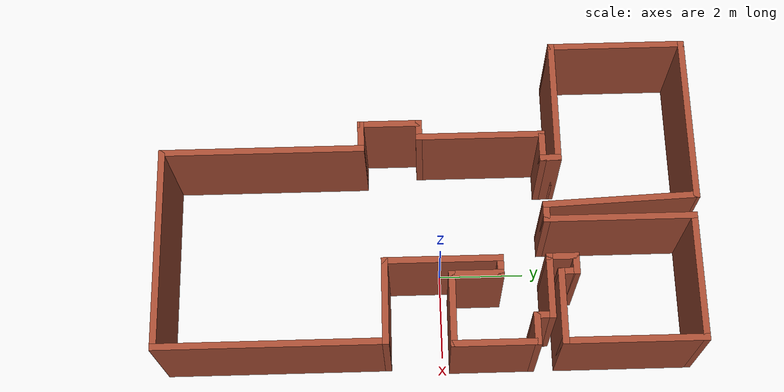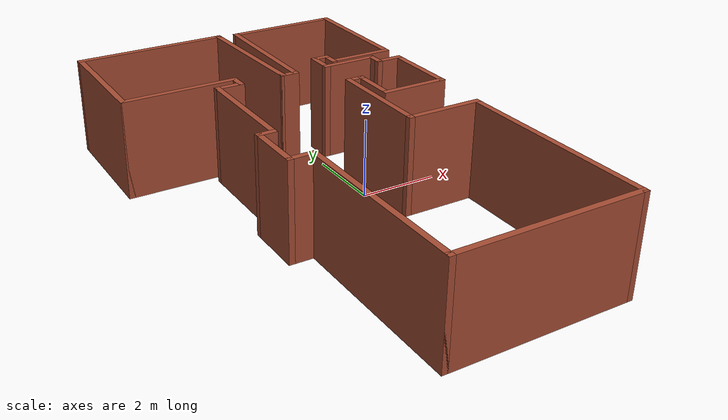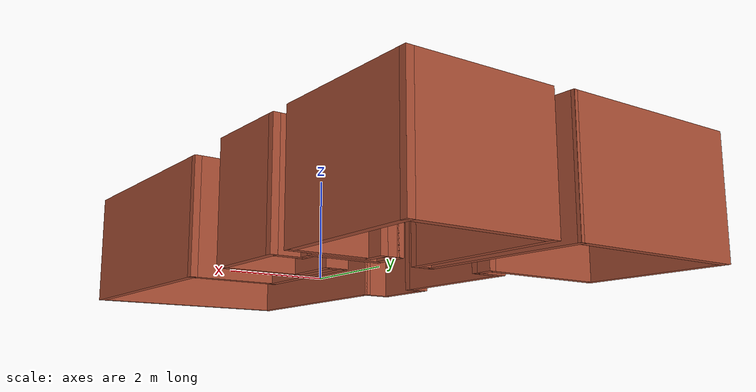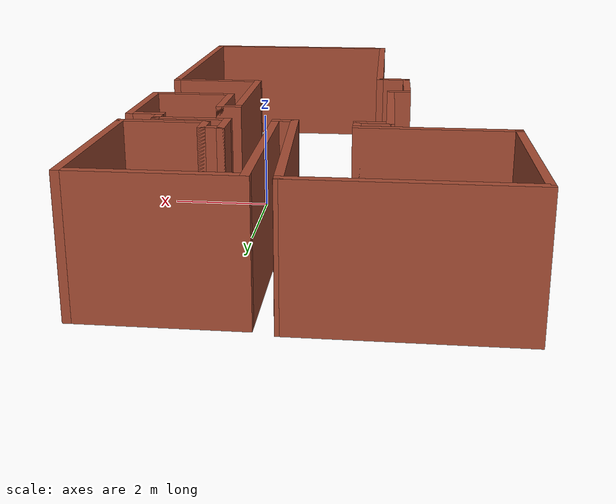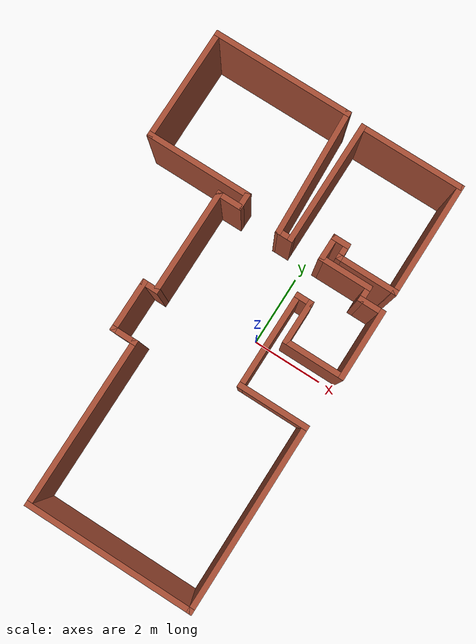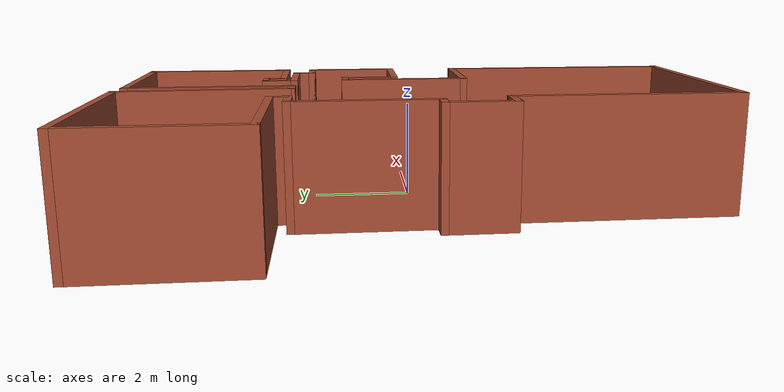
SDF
<?xml version='1.0'?>
<sdf version='1.6'>
  <model name='map_55'>
    <pose frame=''>-1.29844 -0.244983 0 0 -0 0</pose>
    <link name='Wall_0'>
      <collision name='Wall_0_Collision'>
        <geometry>
          <box>
            <size>4 0.15 2.5</size>
          </box>
        </geometry>
        <pose frame=''>0 0 1.25 0 -0 0</pose>
      </collision>
      <visual name='Wall_0_Visual'>
        <pose frame=''>0 0 1.25 0 -0 0</pose>
        <geometry>
          <box>
            <size>4 0.15 2.5</size>
          </box>
        </geometry>
        <material>
          <script>
            <uri>file://media/materials/scripts/gazebo.material</uri>
            <name>Gazebo/Bricks</name>
          </script>
          <ambient>1 1 1 1</ambient>
        </material>
        <meta>
          <layer>0</layer>
        </meta>
      </visual>
      <pose frame=''>-1.675 6.12341 0 0 -0 3.14159</pose>
    </link>
    <link name='Wall_1'>
      <collision name='Wall_1_Collision'>
        <geometry>
          <box>
            <size>3.25 0.15 2.5</size>
          </box>
        </geometry>
        <pose frame=''>0 0 1.25 0 -0 0</pose>
      </collision>
      <visual name='Wall_1_Visual'>
        <pose frame=''>0 0 1.25 0 -0 0</pose>
        <geometry>
          <box>
            <size>3.25 0.15 2.5</size>
          </box>
        </geometry>
        <material>
          <script>
            <uri>file://media/materials/scripts/gazebo.material</uri>
            <name>Gazebo/Bricks</name>
          </script>
          <ambient>1 1 1 1</ambient>
        </material>
        <meta>
          <layer>0</layer>
        </meta>
      </visual>
      <pose frame=''>-3.6 4.57341 0 0 -0 -1.5708</pose>
    </link>
    <link name='Wall_10'>
      <collision name='Wall_10_Collision'>
        <geometry>
          <box>
            <size>4.75 0.15 2.5</size>
          </box>
        </geometry>
        <pose frame=''>0 0 1.25 0 -0 0</pose>
      </collision>
      <visual name='Wall_10_Visual'>
        <pose frame=''>0 0 1.25 0 -0 0</pose>
        <geometry>
          <box>
            <size>4.75 0.15 2.5</size>
          </box>
        </geometry>
        <material>
          <script>
            <uri>file://media/materials/scripts/gazebo.material</uri>
            <name>Gazebo/Bricks</name>
          </script>
          <ambient>1 1 1 1</ambient>
        </material>
        <meta>
          <layer>0</layer>
        </meta>
      </visual>
      <pose frame=''>1.2 -6.12659 0 0 -0 0</pose>
    </link>
    <link name='Wall_11'>
      <collision name='Wall_11_Collision'>
        <geometry>
          <box>
            <size>5.25 0.15 2.5</size>
          </box>
        </geometry>
        <pose frame=''>0 0 1.25 0 -0 0</pose>
      </collision>
      <visual name='Wall_11_Visual'>
        <pose frame=''>0 0 1.25 0 -0 0</pose>
        <geometry>
          <box>
            <size>5.25 0.15 2.5</size>
          </box>
        </geometry>
        <material>
          <script>
            <uri>file://media/materials/scripts/gazebo.material</uri>
            <name>Gazebo/Bricks</name>
          </script>
          <ambient>1 1 1 1</ambient>
        </material>
        <meta>
          <layer>0</layer>
        </meta>
      </visual>
      <pose frame=''>3.5 -3.57659 0 0 -0 1.5708</pose>
    </link>
    <link name='Wall_12'>
      <collision name='Wall_12_Collision'>
        <geometry>
          <box>
            <size>2 0.15 2.5</size>
          </box>
        </geometry>
        <pose frame=''>0 0 1.25 0 -0 0</pose>
      </collision>
      <visual name='Wall_12_Visual'>
        <pose frame=''>0 0 1.25 0 -0 0</pose>
        <geometry>
          <box>
            <size>2 0.15 2.5</size>
          </box>
        </geometry>
        <material>
          <script>
            <uri>file://media/materials/scripts/gazebo.material</uri>
            <name>Gazebo/Bricks</name>
          </script>
          <ambient>1 1 1 1</ambient>
        </material>
        <meta>
          <layer>0</layer>
        </meta>
      </visual>
      <pose frame=''>2.575 -1.02659 0 0 -0 3.14159</pose>
    </link>
    <link name='Wall_13'>
      <collision name='Wall_13_Collision'>
        <geometry>
          <box>
            <size>2.75 0.15 2.5</size>
          </box>
        </geometry>
        <pose frame=''>0 0 1.25 0 -0 0</pose>
      </collision>
      <visual name='Wall_13_Visual'>
        <pose frame=''>0 0 1.25 0 -0 0</pose>
        <geometry>
          <box>
            <size>2.75 0.15 2.5</size>
          </box>
        </geometry>
        <material>
          <script>
            <uri>file://media/materials/scripts/gazebo.material</uri>
            <name>Gazebo/Bricks</name>
          </script>
          <ambient>1 1 1 1</ambient>
        </material>
        <meta>
          <layer>0</layer>
        </meta>
      </visual>
      <pose frame=''>1.65 0.273407 0 0 -0 1.5708</pose>
    </link>
    <link name='Wall_14'>
      <collision name='Wall_14_Collision'>
        <geometry>
          <box>
            <size>0.5 0.15 2.5</size>
          </box>
        </geometry>
        <pose frame=''>0 0 1.25 0 -0 0</pose>
      </collision>
      <visual name='Wall_14_Visual'>
        <pose frame=''>0 0 1.25 0 -0 0</pose>
        <geometry>
          <box>
            <size>0.5 0.15 2.5</size>
          </box>
        </geometry>
        <material>
          <script>
            <uri>file://media/materials/scripts/gazebo.material</uri>
            <name>Gazebo/Bricks</name>
          </script>
          <ambient>1 1 1 1</ambient>
        </material>
        <meta>
          <layer>0</layer>
        </meta>
      </visual>
      <pose frame=''>1.825 1.57341 0 0 -0 0</pose>
    </link>
    <link name='Wall_15'>
      <collision name='Wall_15_Collision'>
        <geometry>
          <box>
            <size>1.25 0.15 2.5</size>
          </box>
        </geometry>
        <pose frame=''>0 0 1.25 0 -0 0</pose>
      </collision>
      <visual name='Wall_15_Visual'>
        <pose frame=''>0 0 1.25 0 -0 0</pose>
        <geometry>
          <box>
            <size>1.25 0.15 2.5</size>
          </box>
        </geometry>
        <material>
          <script>
            <uri>file://media/materials/scripts/gazebo.material</uri>
            <name>Gazebo/Bricks</name>
          </script>
          <ambient>1 1 1 1</ambient>
        </material>
        <meta>
          <layer>0</layer>
        </meta>
      </visual>
      <pose frame=''>2 1.02341 0 0 -0 -1.5708</pose>
    </link>
    <link name='Wall_16'>
      <collision name='Wall_16_Collision'>
        <geometry>
          <box>
            <size>1.75 0.15 2.5</size>
          </box>
        </geometry>
        <pose frame=''>0 0 1.25 0 -0 0</pose>
      </collision>
      <visual name='Wall_16_Visual'>
        <pose frame=''>0 0 1.25 0 -0 0</pose>
        <geometry>
          <box>
            <size>1.75 0.15 2.5</size>
          </box>
        </geometry>
        <material>
          <script>
            <uri>file://media/materials/scripts/gazebo.material</uri>
            <name>Gazebo/Bricks</name>
          </script>
          <ambient>1 1 1 1</ambient>
        </material>
        <meta>
          <layer>0</layer>
        </meta>
      </visual>
      <pose frame=''>2.8 0.473407 0 0 -0 0</pose>
    </link>
    <link name='Wall_17'>
      <collision name='Wall_17_Collision'>
        <geometry>
          <box>
            <size>2 0.15 2.5</size>
          </box>
        </geometry>
        <pose frame=''>0 0 1.25 0 -0 0</pose>
      </collision>
      <visual name='Wall_17_Visual'>
        <pose frame=''>0 0 1.25 0 -0 0</pose>
        <geometry>
          <box>
            <size>2 0.15 2.5</size>
          </box>
        </geometry>
        <material>
          <script>
            <uri>file://media/materials/scripts/gazebo.material</uri>
            <name>Gazebo/Bricks</name>
          </script>
          <ambient>1 1 1 1</ambient>
        </material>
        <meta>
          <layer>0</layer>
        </meta>
      </visual>
      <pose frame=''>3.6 1.39841 0 0 -0 1.5708</pose>
    </link>
    <link name='Wall_18'>
      <collision name='Wall_18_Collision'>
        <geometry>
          <box>
            <size>0.75 0.15 2.5</size>
          </box>
        </geometry>
        <pose frame=''>0 0 1.25 0 -0 0</pose>
      </collision>
      <visual name='Wall_18_Visual'>
        <pose frame=''>0 0 1.25 0 -0 0</pose>
        <geometry>
          <box>
            <size>0.75 0.15 2.5</size>
          </box>
        </geometry>
        <material>
          <script>
            <uri>file://media/materials/scripts/gazebo.material</uri>
            <name>Gazebo/Bricks</name>
          </script>
          <ambient>1 1 1 1</ambient>
        </material>
        <meta>
          <layer>0</layer>
        </meta>
      </visual>
      <pose frame=''>3.3 2.32341 0 0 -0 3.14159</pose>
    </link>
    <link name='Wall_19'>
      <collision name='Wall_19_Collision'>
        <geometry>
          <box>
            <size>0.5 0.15 2.5</size>
          </box>
        </geometry>
        <pose frame=''>0 0 1.25 0 -0 0</pose>
      </collision>
      <visual name='Wall_19_Visual'>
        <pose frame=''>0 0 1.25 0 -0 0</pose>
        <geometry>
          <box>
            <size>0.5 0.15 2.5</size>
          </box>
        </geometry>
        <material>
          <script>
            <uri>file://media/materials/scripts/gazebo.material</uri>
            <name>Gazebo/Bricks</name>
          </script>
          <ambient>1 1 1 1</ambient>
        </material>
        <meta>
          <layer>0</layer>
        </meta>
      </visual>
      <pose frame=''>3 2.49841 0 0 -0 1.5708</pose>
    </link>
    <link name='Wall_2'>
      <collision name='Wall_2_Collision'>
        <geometry>
          <box>
            <size>3 0.15 2.5</size>
          </box>
        </geometry>
        <pose frame=''>0 0 1.25 0 -0 0</pose>
      </collision>
      <visual name='Wall_2_Visual'>
        <pose frame=''>0 0 1.25 0 -0 0</pose>
        <geometry>
          <box>
            <size>3 0.15 2.5</size>
          </box>
        </geometry>
        <material>
          <script>
            <uri>file://media/materials/scripts/gazebo.material</uri>
            <name>Gazebo/Bricks</name>
          </script>
          <ambient>1 1 1 1</ambient>
        </material>
        <meta>
          <layer>0</layer>
        </meta>
      </visual>
      <pose frame=''>-2.175 3.02341 0 0 -0 0</pose>
    </link>
    <link name='Wall_20'>
      <collision name='Wall_20_Collision'>
        <geometry>
          <box>
            <size>1.5 0.15 2.5</size>
          </box>
        </geometry>
        <pose frame=''>0 0 1.25 0 -0 0</pose>
      </collision>
      <visual name='Wall_20_Visual'>
        <pose frame=''>0 0 1.25 0 -0 0</pose>
        <geometry>
          <box>
            <size>1.5 0.15 2.5</size>
          </box>
        </geometry>
        <material>
          <script>
            <uri>file://media/materials/scripts/gazebo.material</uri>
            <name>Gazebo/Bricks</name>
          </script>
          <ambient>1 1 1 1</ambient>
        </material>
        <meta>
          <layer>0</layer>
        </meta>
      </visual>
      <pose frame=''>2.325 2.67341 0 0 -0 3.14159</pose>
    </link>
    <link name='Wall_21'>
      <collision name='Wall_21_Collision'>
        <geometry>
          <box>
            <size>0.75 0.15 2.5</size>
          </box>
        </geometry>
        <pose frame=''>0 0 1.25 0 -0 0</pose>
      </collision>
      <visual name='Wall_21_Visual'>
        <pose frame=''>0 0 1.25 0 -0 0</pose>
        <geometry>
          <box>
            <size>0.75 0.15 2.5</size>
          </box>
        </geometry>
        <material>
          <script>
            <uri>file://media/materials/scripts/gazebo.material</uri>
            <name>Gazebo/Bricks</name>
          </script>
          <ambient>1 1 1 1</ambient>
        </material>
        <meta>
          <layer>0</layer>
        </meta>
      </visual>
      <pose frame=''>1.65 2.97341 0 0 -0 1.5708</pose>
    </link>
    <link name='Wall_22'>
      <collision name='Wall_22_Collision'>
        <geometry>
          <box>
            <size>0.5 0.15 2.5</size>
          </box>
        </geometry>
        <pose frame=''>0 0 1.25 0 -0 0</pose>
      </collision>
      <visual name='Wall_22_Visual'>
        <pose frame=''>0 0 1.25 0 -0 0</pose>
        <geometry>
          <box>
            <size>0.5 0.15 2.5</size>
          </box>
        </geometry>
        <material>
          <script>
            <uri>file://media/materials/scripts/gazebo.material</uri>
            <name>Gazebo/Bricks</name>
          </script>
          <ambient>1 1 1 1</ambient>
        </material>
        <meta>
          <layer>0</layer>
        </meta>
      </visual>
      <pose frame=''>1.825 3.27341 0 0 -0 0</pose>
    </link>
    <link name='Wall_23'>
      <collision name='Wall_23_Collision'>
        <geometry>
          <box>
            <size>0.5 0.15 2.5</size>
          </box>
        </geometry>
        <pose frame=''>0 0 1.25 0 -0 0</pose>
      </collision>
      <visual name='Wall_23_Visual'>
        <pose frame=''>0 0 1.25 0 -0 0</pose>
        <geometry>
          <box>
            <size>0.5 0.15 2.5</size>
          </box>
        </geometry>
        <material>
          <script>
            <uri>file://media/materials/scripts/gazebo.material</uri>
            <name>Gazebo/Bricks</name>
          </script>
          <ambient>1 1 1 1</ambient>
        </material>
        <meta>
          <layer>0</layer>
        </meta>
      </visual>
      <pose frame=''>2 3.09841 0 0 -0 -1.5708</pose>
    </link>
    <link name='Wall_24'>
      <collision name='Wall_24_Collision'>
        <geometry>
          <box>
            <size>1.75 0.15 2.5</size>
          </box>
        </geometry>
        <pose frame=''>0 0 1.25 0 -0 0</pose>
      </collision>
      <visual name='Wall_24_Visual'>
        <pose frame=''>0 0 1.25 0 -0 0</pose>
        <geometry>
          <box>
            <size>1.75 0.15 2.5</size>
          </box>
        </geometry>
        <material>
          <script>
            <uri>file://media/materials/scripts/gazebo.material</uri>
            <name>Gazebo/Bricks</name>
          </script>
          <ambient>1 1 1 1</ambient>
        </material>
        <meta>
          <layer>0</layer>
        </meta>
      </visual>
      <pose frame=''>2.8 2.92341 0 0 -0 0</pose>
    </link>
    <link name='Wall_25'>
      <collision name='Wall_25_Collision'>
        <geometry>
          <box>
            <size>3.25 0.15 2.5</size>
          </box>
        </geometry>
        <pose frame=''>0 0 1.25 0 -0 0</pose>
      </collision>
      <visual name='Wall_25_Visual'>
        <pose frame=''>0 0 1.25 0 -0 0</pose>
        <geometry>
          <box>
            <size>3.25 0.15 2.5</size>
          </box>
        </geometry>
        <material>
          <script>
            <uri>file://media/materials/scripts/gazebo.material</uri>
            <name>Gazebo/Bricks</name>
          </script>
          <ambient>1 1 1 1</ambient>
        </material>
        <meta>
          <layer>0</layer>
        </meta>
      </visual>
      <pose frame=''>3.6 4.47341 0 0 -0 1.5708</pose>
    </link>
    <link name='Wall_26'>
      <collision name='Wall_26_Collision'>
        <geometry>
          <box>
            <size>3 0.15 2.5</size>
          </box>
        </geometry>
        <pose frame=''>0 0 1.25 0 -0 0</pose>
      </collision>
      <visual name='Wall_26_Visual'>
        <pose frame=''>0 0 1.25 0 -0 0</pose>
        <geometry>
          <box>
            <size>3 0.15 2.5</size>
          </box>
        </geometry>
        <material>
          <script>
            <uri>file://media/materials/scripts/gazebo.material</uri>
            <name>Gazebo/Bricks</name>
          </script>
          <ambient>1 1 1 1</ambient>
        </material>
        <meta>
          <layer>0</layer>
        </meta>
      </visual>
      <pose frame=''>2.175 6.02341 0 0 -0 3.14159</pose>
    </link>
    <link name='Wall_27'>
      <collision name='Wall_27_Collision'>
        <geometry>
          <box>
            <size>3.5 0.15 2.5</size>
          </box>
        </geometry>
        <pose frame=''>0 0 1.25 0 -0 0</pose>
      </collision>
      <visual name='Wall_27_Visual'>
        <pose frame=''>0 0 1.25 0 -0 0</pose>
        <geometry>
          <box>
            <size>3.5 0.15 2.5</size>
          </box>
        </geometry>
        <material>
          <script>
            <uri>file://media/materials/scripts/gazebo.material</uri>
            <name>Gazebo/Bricks</name>
          </script>
          <ambient>1 1 1 1</ambient>
        </material>
        <meta>
          <layer>0</layer>
        </meta>
      </visual>
      <pose frame=''>0.75 4.34841 0 0 -0 -1.5708</pose>
    </link>
    <link name='Wall_28'>
      <collision name='Wall_28_Collision'>
        <geometry>
          <box>
            <size>0.5 0.15 2.5</size>
          </box>
        </geometry>
        <pose frame=''>0 0 1.25 0 -0 0</pose>
      </collision>
      <visual name='Wall_28_Visual'>
        <pose frame=''>0 0 1.25 0 -0 0</pose>
        <geometry>
          <box>
            <size>0.5 0.15 2.5</size>
          </box>
        </geometry>
        <material>
          <script>
            <uri>file://media/materials/scripts/gazebo.material</uri>
            <name>Gazebo/Bricks</name>
          </script>
          <ambient>1 1 1 1</ambient>
        </material>
        <meta>
          <layer>0</layer>
        </meta>
      </visual>
      <pose frame=''>0.575 2.67341 0 0 -0 3.14159</pose>
    </link>
    <link name='Wall_29'>
      <collision name='Wall_29_Collision'>
        <geometry>
          <box>
            <size>3.60326 0.15 2.5</size>
          </box>
        </geometry>
        <pose frame=''>0 0 1.25 0 -0 0</pose>
      </collision>
      <visual name='Wall_29_Visual'>
        <pose frame=''>0 0 1.25 0 -0 0</pose>
        <geometry>
          <box>
            <size>3.60326 0.15 2.5</size>
          </box>
        </geometry>
        <material>
          <script>
            <uri>file://media/materials/scripts/gazebo.material</uri>
            <name>Gazebo/Bricks</name>
          </script>
          <ambient>1 1 1 1</ambient>
        </material>
        <meta>
          <layer>0</layer>
        </meta>
      </visual>
      <pose frame=''>0.325 4.39841 0 0 -0 1.61425</pose>
    </link>
    <link name='Wall_3'>
      <collision name='Wall_3_Collision'>
        <geometry>
          <box>
            <size>0.5 0.15 2.5</size>
          </box>
        </geometry>
        <pose frame=''>0 0 1.25 0 -0 0</pose>
      </collision>
      <visual name='Wall_3_Visual'>
        <pose frame=''>0 0 1.25 0 -0 0</pose>
        <geometry>
          <box>
            <size>0.5 0.15 2.5</size>
          </box>
        </geometry>
        <material>
          <script>
            <uri>file://media/materials/scripts/gazebo.material</uri>
            <name>Gazebo/Bricks</name>
          </script>
          <ambient>1 1 1 1</ambient>
        </material>
        <meta>
          <layer>0</layer>
        </meta>
      </visual>
      <pose frame=''>-0.75 2.84841 0 0 -0 -1.5708</pose>
    </link>
    <link name='Wall_4'>
      <collision name='Wall_4_Collision'>
        <geometry>
          <box>
            <size>0.75 0.15 2.5</size>
          </box>
        </geometry>
        <pose frame=''>0 0 1.25 0 -0 0</pose>
      </collision>
      <visual name='Wall_4_Visual'>
        <pose frame=''>0 0 1.25 0 -0 0</pose>
        <geometry>
          <box>
            <size>0.75 0.15 2.5</size>
          </box>
        </geometry>
        <material>
          <script>
            <uri>file://media/materials/scripts/gazebo.material</uri>
            <name>Gazebo/Bricks</name>
          </script>
          <ambient>1 1 1 1</ambient>
        </material>
        <meta>
          <layer>0</layer>
        </meta>
      </visual>
      <pose frame=''>-1.05 2.67341 0 0 -0 3.14159</pose>
    </link>
    <link name='Wall_5'>
      <collision name='Wall_5_Collision'>
        <geometry>
          <box>
            <size>3 0.15 2.5</size>
          </box>
        </geometry>
        <pose frame=''>0 0 1.25 0 -0 0</pose>
      </collision>
      <visual name='Wall_5_Visual'>
        <pose frame=''>0 0 1.25 0 -0 0</pose>
        <geometry>
          <box>
            <size>3 0.15 2.5</size>
          </box>
        </geometry>
        <material>
          <script>
            <uri>file://media/materials/scripts/gazebo.material</uri>
            <name>Gazebo/Bricks</name>
          </script>
          <ambient>1 1 1 1</ambient>
        </material>
        <meta>
          <layer>0</layer>
        </meta>
      </visual>
      <pose frame=''>-1.35 1.24841 0 0 -0 -1.5708</pose>
    </link>
    <link name='Wall_6'>
      <collision name='Wall_6_Collision'>
        <geometry>
          <box>
            <size>0.5 0.15 2.5</size>
          </box>
        </geometry>
        <pose frame=''>0 0 1.25 0 -0 0</pose>
      </collision>
      <visual name='Wall_6_Visual'>
        <pose frame=''>0 0 1.25 0 -0 0</pose>
        <geometry>
          <box>
            <size>0.5 0.15 2.5</size>
          </box>
        </geometry>
        <material>
          <script>
            <uri>file://media/materials/scripts/gazebo.material</uri>
            <name>Gazebo/Bricks</name>
          </script>
          <ambient>1 1 1 1</ambient>
        </material>
        <meta>
          <layer>0</layer>
        </meta>
      </visual>
      <pose frame=''>-1.525 -0.176593 0 0 -0 3.14159</pose>
    </link>
    <link name='Wall_7'>
      <collision name='Wall_7_Collision'>
        <geometry>
          <box>
            <size>1.5 0.15 2.5</size>
          </box>
        </geometry>
        <pose frame=''>0 0 1.25 0 -0 0</pose>
      </collision>
      <visual name='Wall_7_Visual'>
        <pose frame=''>0 0 1.25 0 -0 0</pose>
        <geometry>
          <box>
            <size>1.5 0.15 2.5</size>
          </box>
        </geometry>
        <material>
          <script>
            <uri>file://media/materials/scripts/gazebo.material</uri>
            <name>Gazebo/Bricks</name>
          </script>
          <ambient>1 1 1 1</ambient>
        </material>
        <meta>
          <layer>0</layer>
        </meta>
      </visual>
      <pose frame=''>-1.7 -0.851593 0 0 -0 -1.5708</pose>
    </link>
    <link name='Wall_8'>
      <collision name='Wall_8_Collision'>
        <geometry>
          <box>
            <size>0.75 0.15 2.5</size>
          </box>
        </geometry>
        <pose frame=''>0 0 1.25 0 -0 0</pose>
      </collision>
      <visual name='Wall_8_Visual'>
        <pose frame=''>0 0 1.25 0 -0 0</pose>
        <geometry>
          <box>
            <size>0.75 0.15 2.5</size>
          </box>
        </geometry>
        <material>
          <script>
            <uri>file://media/materials/scripts/gazebo.material</uri>
            <name>Gazebo/Bricks</name>
          </script>
          <ambient>1 1 1 1</ambient>
        </material>
        <meta>
          <layer>0</layer>
        </meta>
      </visual>
      <pose frame=''>-1.4 -1.52659 0 0 -0 0</pose>
    </link>
    <link name='Wall_9'>
      <collision name='Wall_9_Collision'>
        <geometry>
          <box>
            <size>4.75 0.15 2.5</size>
          </box>
        </geometry>
        <pose frame=''>0 0 1.25 0 -0 0</pose>
      </collision>
      <visual name='Wall_9_Visual'>
        <pose frame=''>0 0 1.25 0 -0 0</pose>
        <geometry>
          <box>
            <size>4.75 0.15 2.5</size>
          </box>
        </geometry>
        <material>
          <script>
            <uri>file://media/materials/scripts/gazebo.material</uri>
            <name>Gazebo/Bricks</name>
          </script>
          <ambient>1 1 1 1</ambient>
        </material>
        <meta>
          <layer>0</layer>
        </meta>
      </visual>
      <pose frame=''>-1.1 -3.82659 0 0 -0 -1.5708</pose>
    </link>
    <static>1</static>
  </model>
</sdf>
